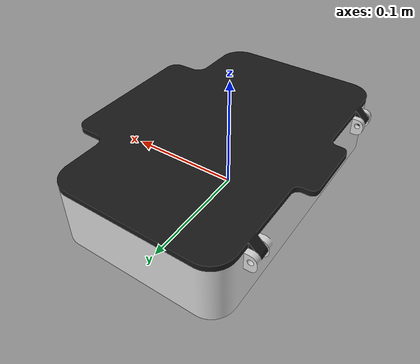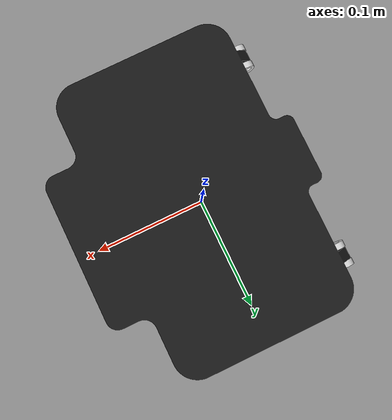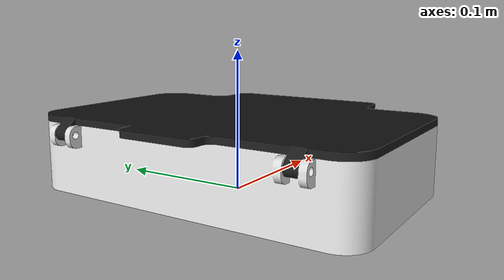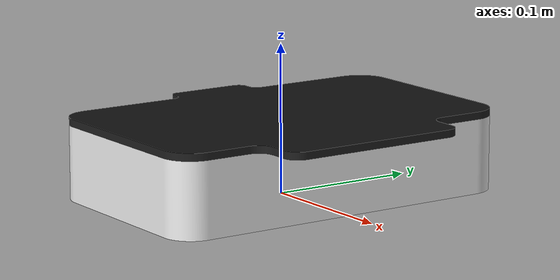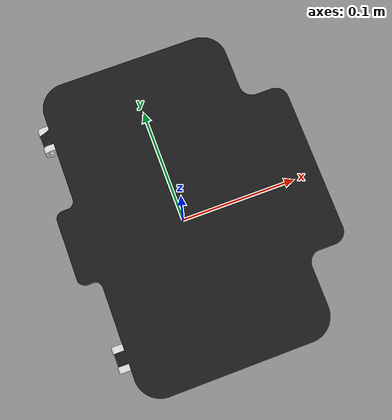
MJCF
<mujoco model="chest">

    <compiler assetdir="assets/" angle="radian"/>

    <asset>
        <mesh file="collision_mesh_box_bottom.stl" name="chest_base_col_floor"/>
        <mesh file="collision_mesh_box_back.stl" name="chest_base_col_xn"/>
        <mesh file="collision_mesh_box_front.stl" name="chest_base_col_xp"/>
        <mesh file="collision_mesh_box_right.stl" name="chest_base_col_yn"/>
        <mesh file="collision_mesh_box_left.stl" name="chest_base_col_yp"/>
        <mesh file="collision_mesh_lid_1.stl" name="chest_lid1_col" scale="1 1 0.33"/>
        <mesh file="collision_mesh_lid_2.stl" name="chest_lid2_col" scale="1 1 0.33"/>

        <mesh file="chest_lid.stl" name="chest_lid"/>
        <mesh file="chest_base.stl" name="chest_base"/>
    </asset>

    <default>
        <default class="chest">
            <default class="visual">
                <geom group="2" contype="0" conaffinity="0"/>
            </default>
            <default class="collision">
                <geom group="3" condim="3" margin="0.001"/>
            </default>
        </default>
    </default>

    <worldbody>
        <body name="chest_body" childclass="chest">
            <inertial pos="0 0 0.078" mass="14.5" diaginertia="0.0777 0.1014 0.1202"/>
            <geom class="collision" type="mesh" euler="0 0 1.5708" mesh="chest_base_col_floor"/>
            <geom class="collision" type="mesh" euler="0 0 1.5708" mesh="chest_base_col_xn"/>
            <geom class="collision" type="mesh" euler="0 0 1.5708" mesh="chest_base_col_xp"/>
            <geom class="collision" type="mesh" euler="0 0 1.5708" mesh="chest_base_col_yn"/>
            <geom class="collision" type="mesh" euler="0 0 1.5708" mesh="chest_base_col_yp"/>
            <geom class="visual" type="mesh" euler="0 0 1.5708" rgba="0.85 0.85 0.85 1" mesh="chest_base"/>
            <site type="box" name="placement_site" quat="1 0 0 0" pos="0.0 0.0 0.035" size="0.065 0.115 0.03" group="0" rgba="1 1 0 0" />
            <body name="chest_lid">
                <joint axis="0 1 0" pos="-0.080 0 0.044" limited="true" name="chest_hinge" range="-1.55 0" springref="0" stiffness="0.5" damping="0" />
                <inertial pos="0 0 0.156" mass="0.5" diaginertia="0.00168 0.00251 0.00415"/>
                <geom class="collision" type="mesh" euler="0 0 1.5708" pos="0 0 0.0335" mesh="chest_lid1_col"/>
                <geom class="collision" type="mesh" euler="0 0 1.5708" pos="0 0 0.0335" mesh="chest_lid2_col"/>
                <geom class="visual" type="mesh" euler="0 0 1.5708" rgba="0.1 0.1 0.1 1" mesh="chest_lid"/>
            </body>
        </body>

    </worldbody>
    <contact>
        <exclude body1="chest_body" body2="chest_lid"/>
    </contact>
</mujoco>
